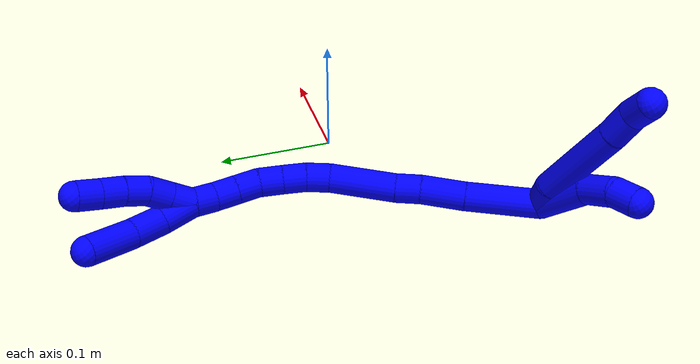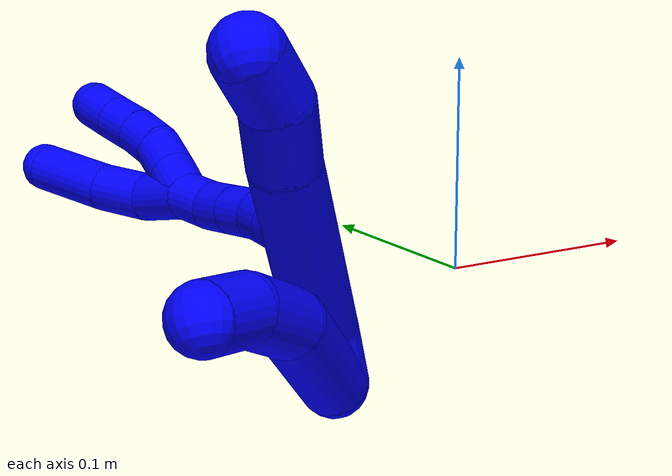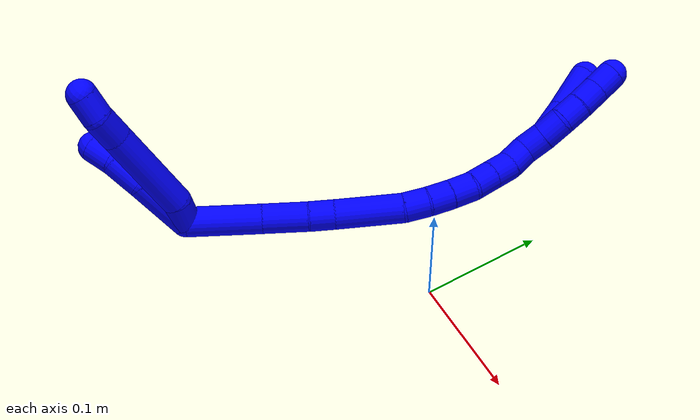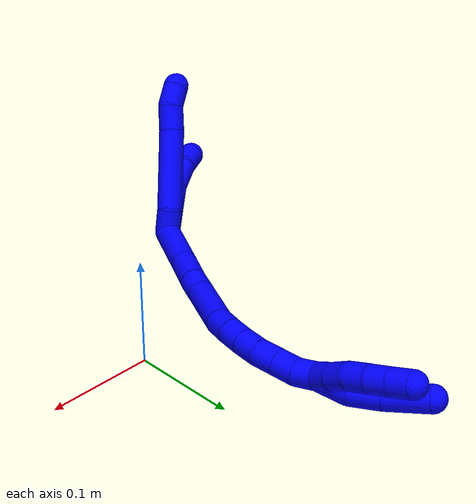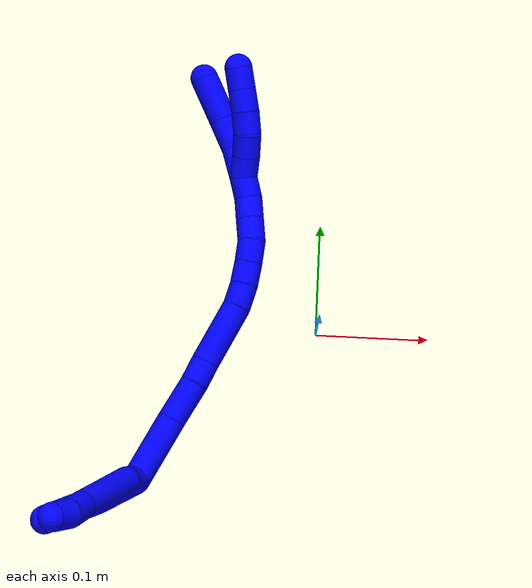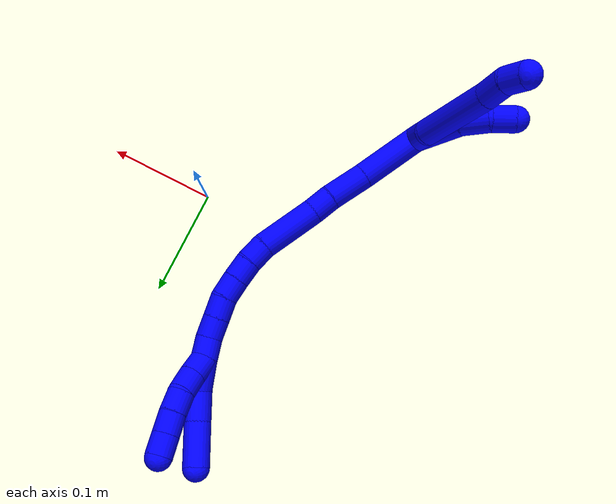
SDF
<sdf version="1.7">
 <world name="default">
  <model name="1">
   <static>0</static>
   <link name="1">
    <collision name="collision-cylinder-e_1_2_8">
     <pose>0.00471 -0.006912 -0.008269 2.44536 0.412019 1.04496</pose>
     <geometry><cylinder><radius>0.0125</radius><length>0.023524</length></cylinder></geometry>
     <surface>
      <friction><ode><mu>1.16</mu><mu2>1.16</mu2><slip1>0</slip1><slip2>0</slip2></ode></friction>
      <contact><ode><kp>1e+06</kp><kd>1</kd><max_vel>0</max_vel><min_depth>0.001</min_depth></ode></contact>
     </surface>
    </collision>
    <visual name="visual-cylinder-e_1_2_8">
     <pose>0.00471 -0.006912 -0.008269 2.44536 0.412019 1.04496</pose>
     <geometry><cylinder><radius>0.0125</radius><length>0.023524</length></cylinder></geometry>
     <material><ambient>0 0 1 1</ambient></material>
    </visual>
    <collision name="collision-cylinder-e_2_8_9">
     <pose>0.029758 -0.042729 -0.035088 2.14136 0.534631 0.929176</pose>
     <geometry><cylinder><radius>0.0125</radius><length>0.079831</length></cylinder></geometry>
     <surface>
      <friction><ode><mu>1.16</mu><mu2>1.16</mu2><slip1>0</slip1><slip2>0</slip2></ode></friction>
      <contact><ode><kp>1e+06</kp><kd>1</kd><max_vel>0</max_vel><min_depth>0.001</min_depth></ode></contact>
     </surface>
    </collision>
    <visual name="visual-cylinder-e_2_8_9">
     <pose>0.029758 -0.042729 -0.035088 2.14136 0.534631 0.929176</pose>
     <geometry><cylinder><radius>0.0125</radius><length>0.079831</length></cylinder></geometry>
     <material><ambient>0 0 1 1</ambient></material>
    </visual>
    <collision name="collision-cylinder-e_3_9_10">
     <pose>0.055507 -0.081052 -0.059946 2.16093 0.445341 0.802323</pose>
     <geometry><cylinder><radius>0.0125</radius><length>0.025121</length></cylinder></geometry>
     <surface>
      <friction><ode><mu>1.16</mu><mu2>1.16</mu2><slip1>0</slip1><slip2>0</slip2></ode></friction>
      <contact><ode><kp>1e+06</kp><kd>1</kd><max_vel>0</max_vel><min_depth>0.001</min_depth></ode></contact>
     </surface>
    </collision>
    <visual name="visual-cylinder-e_3_9_10">
     <pose>0.055507 -0.081052 -0.059946 2.16093 0.445341 0.802323</pose>
     <geometry><cylinder><radius>0.0125</radius><length>0.025121</length></cylinder></geometry>
     <material><ambient>0 0 1 1</ambient></material>
    </visual>
    <collision name="collision-cylinder-e_4_10_6">
     <pose>0.068262 -0.096479 -0.071332 2.27247 0.751099 1.40831</pose>
     <geometry><cylinder><radius>0.0125</radius><length>0.021525</length></cylinder></geometry>
     <surface>
      <friction><ode><mu>1.16</mu><mu2>1.16</mu2><slip1>0</slip1><slip2>0</slip2></ode></friction>
      <contact><ode><kp>1e+06</kp><kd>1</kd><max_vel>0</max_vel><min_depth>0.001</min_depth></ode></contact>
     </surface>
    </collision>
    <visual name="visual-cylinder-e_4_10_6">
     <pose>0.068262 -0.096479 -0.071332 2.27247 0.751099 1.40831</pose>
     <geometry><cylinder><radius>0.0125</radius><length>0.021525</length></cylinder></geometry>
     <material><ambient>0 0 1 1</ambient></material>
    </visual>
    <collision name="collision-cylinder-e_1_2_11">
     <pose>0.017382 -0.016895 -0.006401 1.93294 0.766095 1.05649</pose>
     <geometry><cylinder><radius>0.0125</radius><length>0.050142</length></cylinder></geometry>
     <surface>
      <friction><ode><mu>1.16</mu><mu2>1.16</mu2><slip1>0</slip1><slip2>0</slip2></ode></friction>
      <contact><ode><kp>1e+06</kp><kd>1</kd><max_vel>0</max_vel><min_depth>0.001</min_depth></ode></contact>
     </surface>
    </collision>
    <visual name="visual-cylinder-e_1_2_11">
     <pose>0.017382 -0.016895 -0.006401 1.93294 0.766095 1.05649</pose>
     <geometry><cylinder><radius>0.0125</radius><length>0.050142</length></cylinder></geometry>
     <material><ambient>0 0 1 1</ambient></material>
    </visual>
    <collision name="collision-cylinder-e_2_11_12">
     <pose>0.046985 -0.04078 -0.013402 1.65643 1.0496 1.12549</pose>
     <geometry><cylinder><radius>0.0125</radius><length>0.028183</length></cylinder></geometry>
     <surface>
      <friction><ode><mu>1.16</mu><mu2>1.16</mu2><slip1>0</slip1><slip2>0</slip2></ode></friction>
      <contact><ode><kp>1e+06</kp><kd>1</kd><max_vel>0</max_vel><min_depth>0.001</min_depth></ode></contact>
     </surface>
    </collision>
    <visual name="visual-cylinder-e_2_11_12">
     <pose>0.046985 -0.04078 -0.013402 1.65643 1.0496 1.12549</pose>
     <geometry><cylinder><radius>0.0125</radius><length>0.028183</length></cylinder></geometry>
     <material><ambient>0 0 1 1</ambient></material>
    </visual>
    <collision name="collision-cylinder-e_3_12_5">
     <pose>0.069131 -0.05138 -0.01157 0.977892 1.15763 0.669198</pose>
     <geometry><cylinder><radius>0.0125</radius><length>0.021675</length></cylinder></geometry>
     <surface>
      <friction><ode><mu>1.16</mu><mu2>1.16</mu2><slip1>0</slip1><slip2>0</slip2></ode></friction>
      <contact><ode><kp>1e+06</kp><kd>1</kd><max_vel>0</max_vel><min_depth>0.001</min_depth></ode></contact>
     </surface>
    </collision>
    <visual name="visual-cylinder-e_3_12_5">
     <pose>0.069131 -0.05138 -0.01157 0.977892 1.15763 0.669198</pose>
     <geometry><cylinder><radius>0.0125</radius><length>0.021675</length></cylinder></geometry>
     <material><ambient>0 0 1 1</ambient></material>
    </visual>
    <collision name="collision-cylinder-e_1_2_13">
     <pose>-0.0145 0.022646 -0.015911 -2.18326 -0.482597 0.884714</pose>
     <geometry><cylinder><radius>0.0125</radius><length>0.06249</length></cylinder></geometry>
     <surface>
      <friction><ode><mu>1.16</mu><mu2>1.16</mu2><slip1>0</slip1><slip2>0</slip2></ode></friction>
      <contact><ode><kp>1e+06</kp><kd>1</kd><max_vel>0</max_vel><min_depth>0.001</min_depth></ode></contact>
     </surface>
    </collision>
    <visual name="visual-cylinder-e_1_2_13">
     <pose>-0.0145 0.022646 -0.015911 -2.18326 -0.482597 0.884714</pose>
     <geometry><cylinder><radius>0.0125</radius><length>0.06249</length></cylinder></geometry>
     <material><ambient>0 0 1 1</ambient></material>
    </visual>
    <collision name="collision-cylinder-e_2_13_14">
     <pose>-0.038117 0.058234 -0.04212 -2.24292 -0.503766 0.980422</pose>
     <geometry><cylinder><radius>0.0125</radius><length>0.037771</length></cylinder></geometry>
     <surface>
      <friction><ode><mu>1.16</mu><mu2>1.16</mu2><slip1>0</slip1><slip2>0</slip2></ode></friction>
      <contact><ode><kp>1e+06</kp><kd>1</kd><max_vel>0</max_vel><min_depth>0.001</min_depth></ode></contact>
     </surface>
    </collision>
    <visual name="visual-cylinder-e_2_13_14">
     <pose>-0.038117 0.058234 -0.04212 -2.24292 -0.503766 0.980422</pose>
     <geometry><cylinder><radius>0.0125</radius><length>0.037771</length></cylinder></geometry>
     <material><ambient>0 0 1 1</ambient></material>
    </visual>
    <collision name="collision-cylinder-e_3_14_15">
     <pose>-0.051671 0.079297 -0.057842 -2.15967 -0.426482 0.769653</pose>
     <geometry><cylinder><radius>0.0125</radius><length>0.021454</length></cylinder></geometry>
     <surface>
      <friction><ode><mu>1.16</mu><mu2>1.16</mu2><slip1>0</slip1><slip2>0</slip2></ode></friction>
      <contact><ode><kp>1e+06</kp><kd>1</kd><max_vel>0</max_vel><min_depth>0.001</min_depth></ode></contact>
     </surface>
    </collision>
    <visual name="visual-cylinder-e_3_14_15">
     <pose>-0.051671 0.079297 -0.057842 -2.15967 -0.426482 0.769653</pose>
     <geometry><cylinder><radius>0.0125</radius><length>0.021454</length></cylinder></geometry>
     <material><ambient>0 0 1 1</ambient></material>
    </visual>
    <collision name="collision-cylinder-e_4_15_16">
     <pose>-0.068743 0.107046 -0.079519 -2.26239 -0.460285 0.92439</pose>
     <geometry><cylinder><radius>0.0125</radius><length>0.056886</length></cylinder></geometry>
     <surface>
      <friction><ode><mu>1.16</mu><mu2>1.16</mu2><slip1>0</slip1><slip2>0</slip2></ode></friction>
      <contact><ode><kp>1e+06</kp><kd>1</kd><max_vel>0</max_vel><min_depth>0.001</min_depth></ode></contact>
     </surface>
    </collision>
    <visual name="visual-cylinder-e_4_15_16">
     <pose>-0.068743 0.107046 -0.079519 -2.26239 -0.460285 0.92439</pose>
     <geometry><cylinder><radius>0.0125</radius><length>0.056886</length></cylinder></geometry>
     <material><ambient>0 0 1 1</ambient></material>
    </visual>
    <collision name="collision-cylinder-e_5_16_17">
     <pose>-0.084114 0.134506 -0.101793 -2.22626 -0.27024 0.538611</pose>
     <geometry><cylinder><radius>0.0125</radius><length>0.020504</length></cylinder></geometry>
     <surface>
      <friction><ode><mu>1.16</mu><mu2>1.16</mu2><slip1>0</slip1><slip2>0</slip2></ode></friction>
      <contact><ode><kp>1e+06</kp><kd>1</kd><max_vel>0</max_vel><min_depth>0.001</min_depth></ode></contact>
     </surface>
    </collision>
    <visual name="visual-cylinder-e_5_16_17">
     <pose>-0.084114 0.134506 -0.101793 -2.22626 -0.27024 0.538611</pose>
     <geometry><cylinder><radius>0.0125</radius><length>0.020504</length></cylinder></geometry>
     <material><ambient>0 0 1 1</ambient></material>
    </visual>
    <collision name="collision-cylinder-e_6_17_18">
     <pose>-0.088444 0.15082 -0.113113 -2.12917 -0.157956 0.283595</pose>
     <geometry><cylinder><radius>0.0125</radius><length>0.020252</length></cylinder></geometry>
     <surface>
      <friction><ode><mu>1.16</mu><mu2>1.16</mu2><slip1>0</slip1><slip2>0</slip2></ode></friction>
      <contact><ode><kp>1e+06</kp><kd>1</kd><max_vel>0</max_vel><min_depth>0.001</min_depth></ode></contact>
     </surface>
    </collision>
    <visual name="visual-cylinder-e_6_17_18">
     <pose>-0.088444 0.15082 -0.113113 -2.12917 -0.157956 0.283595</pose>
     <geometry><cylinder><radius>0.0125</radius><length>0.020252</length></cylinder></geometry>
     <material><ambient>0 0 1 1</ambient></material>
    </visual>
    <collision name="collision-cylinder-e_7_18_19">
     <pose>-0.091115 0.167869 -0.123883 -2.13916 -0.105712 0.19253</pose>
     <geometry><cylinder><radius>0.0125</radius><length>0.020447</length></cylinder></geometry>
     <surface>
      <friction><ode><mu>1.16</mu><mu2>1.16</mu2><slip1>0</slip1><slip2>0</slip2></ode></friction>
      <contact><ode><kp>1e+06</kp><kd>1</kd><max_vel>0</max_vel><min_depth>0.001</min_depth></ode></contact>
     </surface>
    </collision>
    <visual name="visual-cylinder-e_7_18_19">
     <pose>-0.091115 0.167869 -0.123883 -2.13916 -0.105712 0.19253</pose>
     <geometry><cylinder><radius>0.0125</radius><length>0.020447</length></cylinder></geometry>
     <material><ambient>0 0 1 1</ambient></material>
    </visual>
    <collision name="collision-cylinder-e_8_19_20">
     <pose>-0.091155 0.185362 -0.133894 -2.04128 0.103412 -0.168361</pose>
     <geometry><cylinder><radius>0.0125</radius><length>0.020133</length></cylinder></geometry>
     <surface>
      <friction><ode><mu>1.16</mu><mu2>1.16</mu2><slip1>0</slip1><slip2>0</slip2></ode></friction>
      <contact><ode><kp>1e+06</kp><kd>1</kd><max_vel>0</max_vel><min_depth>0.001</min_depth></ode></contact>
     </surface>
    </collision>
    <visual name="visual-cylinder-e_8_19_20">
     <pose>-0.091155 0.185362 -0.133894 -2.04128 0.103412 -0.168361</pose>
     <geometry><cylinder><radius>0.0125</radius><length>0.020133</length></cylinder></geometry>
     <material><ambient>0 0 1 1</ambient></material>
    </visual>
    <collision name="collision-cylinder-e_9_20_21">
     <pose>-0.08911 0.20317 -0.142945 -2.04071 0.100601 -0.163694</pose>
     <geometry><cylinder><radius>0.0125</radius><length>0.020028</length></cylinder></geometry>
     <surface>
      <friction><ode><mu>1.16</mu><mu2>1.16</mu2><slip1>0</slip1><slip2>0</slip2></ode></friction>
      <contact><ode><kp>1e+06</kp><kd>1</kd><max_vel>0</max_vel><min_depth>0.001</min_depth></ode></contact>
     </surface>
    </collision>
    <visual name="visual-cylinder-e_9_20_21">
     <pose>-0.08911 0.20317 -0.142945 -2.04071 0.100601 -0.163694</pose>
     <geometry><cylinder><radius>0.0125</radius><length>0.020028</length></cylinder></geometry>
     <material><ambient>0 0 1 1</ambient></material>
    </visual>
    <collision name="collision-cylinder-e_10_21_1">
     <pose>-0.085389 0.219758 -0.153255 -2.21601 0.274542 -0.540211</pose>
     <geometry><cylinder><radius>0.0125</radius><length>0.020035</length></cylinder></geometry>
     <surface>
      <friction><ode><mu>1.16</mu><mu2>1.16</mu2><slip1>0</slip1><slip2>0</slip2></ode></friction>
      <contact><ode><kp>1e+06</kp><kd>1</kd><max_vel>0</max_vel><min_depth>0.001</min_depth></ode></contact>
     </surface>
    </collision>
    <visual name="visual-cylinder-e_10_21_1">
     <pose>-0.085389 0.219758 -0.153255 -2.21601 0.274542 -0.540211</pose>
     <geometry><cylinder><radius>0.0125</radius><length>0.020035</length></cylinder></geometry>
     <material><ambient>0 0 1 1</ambient></material>
    </visual>
    <collision name="collision-cylinder-e_1_1_22">
     <pose>-0.082928 0.232431 -0.167728 -2.62138 -0.025488 0.095702</pose>
     <geometry><cylinder><radius>0.0125</radius><length>0.02</length></cylinder></geometry>
     <surface>
      <friction><ode><mu>1.16</mu><mu2>1.16</mu2><slip1>0</slip1><slip2>0</slip2></ode></friction>
      <contact><ode><kp>1e+06</kp><kd>1</kd><max_vel>0</max_vel><min_depth>0.001</min_depth></ode></contact>
     </surface>
    </collision>
    <visual name="visual-cylinder-e_1_1_22">
     <pose>-0.082928 0.232431 -0.167728 -2.62138 -0.025488 0.095702</pose>
     <geometry><cylinder><radius>0.0125</radius><length>0.02</length></cylinder></geometry>
     <material><ambient>0 0 1 1</ambient></material>
    </visual>
    <collision name="collision-cylinder-e_2_22_23">
     <pose>-0.082748 0.242117 -0.185209 -2.64981 0.043486 -0.172869</pose>
     <geometry><cylinder><radius>0.0125</radius><length>0.02</length></cylinder></geometry>
     <surface>
      <friction><ode><mu>1.16</mu><mu2>1.16</mu2><slip1>0</slip1><slip2>0</slip2></ode></friction>
      <contact><ode><kp>1e+06</kp><kd>1</kd><max_vel>0</max_vel><min_depth>0.001</min_depth></ode></contact>
     </surface>
    </collision>
    <visual name="visual-cylinder-e_2_22_23">
     <pose>-0.082748 0.242117 -0.185209 -2.64981 0.043486 -0.172869</pose>
     <geometry><cylinder><radius>0.0125</radius><length>0.02</length></cylinder></geometry>
     <material><ambient>0 0 1 1</ambient></material>
    </visual>
    <collision name="collision-cylinder-e_3_23_24">
     <pose>-0.080746 0.253515 -0.20129 -2.39873 0.157324 -0.399345</pose>
     <geometry><cylinder><radius>0.0125</radius><length>0.02</length></cylinder></geometry>
     <surface>
      <friction><ode><mu>1.16</mu><mu2>1.16</mu2><slip1>0</slip1><slip2>0</slip2></ode></friction>
      <contact><ode><kp>1e+06</kp><kd>1</kd><max_vel>0</max_vel><min_depth>0.001</min_depth></ode></contact>
     </surface>
    </collision>
    <visual name="visual-cylinder-e_3_23_24">
     <pose>-0.080746 0.253515 -0.20129 -2.39873 0.157324 -0.399345</pose>
     <geometry><cylinder><radius>0.0125</radius><length>0.02</length></cylinder></geometry>
     <material><ambient>0 0 1 1</ambient></material>
    </visual>
    <collision name="collision-cylinder-e_4_24_25">
     <pose>-0.076955 0.267236 -0.215308 -2.33469 0.224355 -0.516034</pose>
     <geometry><cylinder><radius>0.0125</radius><length>0.02</length></cylinder></geometry>
     <surface>
      <friction><ode><mu>1.16</mu><mu2>1.16</mu2><slip1>0</slip1><slip2>0</slip2></ode></friction>
      <contact><ode><kp>1e+06</kp><kd>1</kd><max_vel>0</max_vel><min_depth>0.001</min_depth></ode></contact>
     </surface>
    </collision>
    <visual name="visual-cylinder-e_4_24_25">
     <pose>-0.076955 0.267236 -0.215308 -2.33469 0.224355 -0.516034</pose>
     <geometry><cylinder><radius>0.0125</radius><length>0.02</length></cylinder></geometry>
     <material><ambient>0 0 1 1</ambient></material>
    </visual>
    <collision name="collision-cylinder-e_5_25_4">
     <pose>-0.072492 0.281158 -0.228954 -2.35769 0.225707 -0.535235</pose>
     <geometry><cylinder><radius>0.0125</radius><length>0.02</length></cylinder></geometry>
     <surface>
      <friction><ode><mu>1.16</mu><mu2>1.16</mu2><slip1>0</slip1><slip2>0</slip2></ode></friction>
      <contact><ode><kp>1e+06</kp><kd>1</kd><max_vel>0</max_vel><min_depth>0.001</min_depth></ode></contact>
     </surface>
    </collision>
    <visual name="visual-cylinder-e_5_25_4">
     <pose>-0.072492 0.281158 -0.228954 -2.35769 0.225707 -0.535235</pose>
     <geometry><cylinder><radius>0.0125</radius><length>0.02</length></cylinder></geometry>
     <material><ambient>0 0 1 1</ambient></material>
    </visual>
    <collision name="collision-cylinder-e_1_1_26">
     <pose>-0.079023 0.24082 -0.163579 -1.89739 0.253211 -0.351352</pose>
     <geometry><cylinder><radius>0.0125</radius><length>0.029138</length></cylinder></geometry>
     <surface>
      <friction><ode><mu>1.16</mu><mu2>1.16</mu2><slip1>0</slip1><slip2>0</slip2></ode></friction>
      <contact><ode><kp>1e+06</kp><kd>1</kd><max_vel>0</max_vel><min_depth>0.001</min_depth></ode></contact>
     </surface>
    </collision>
    <visual name="visual-cylinder-e_1_1_26">
     <pose>-0.079023 0.24082 -0.163579 -1.89739 0.253211 -0.351352</pose>
     <geometry><cylinder><radius>0.0125</radius><length>0.029138</length></cylinder></geometry>
     <material><ambient>0 0 1 1</ambient></material>
    </visual>
    <collision name="collision-cylinder-e_2_26_27">
     <pose>-0.068991 0.265261 -0.175125 -2.13557 0.452809 -0.792974</pose>
     <geometry><cylinder><radius>0.0125</radius><length>0.029178</length></cylinder></geometry>
     <surface>
      <friction><ode><mu>1.16</mu><mu2>1.16</mu2><slip1>0</slip1><slip2>0</slip2></ode></friction>
      <contact><ode><kp>1e+06</kp><kd>1</kd><max_vel>0</max_vel><min_depth>0.001</min_depth></ode></contact>
     </surface>
    </collision>
    <visual name="visual-cylinder-e_2_26_27">
     <pose>-0.068991 0.265261 -0.175125 -2.13557 0.452809 -0.792974</pose>
     <geometry><cylinder><radius>0.0125</radius><length>0.029178</length></cylinder></geometry>
     <material><ambient>0 0 1 1</ambient></material>
    </visual>
    <collision name="collision-cylinder-e_3_27_3">
     <pose>-0.052977 0.290779 -0.193688 -2.24519 0.480359 -0.942177</pose>
     <geometry><cylinder><radius>0.0125</radius><length>0.041684</length></cylinder></geometry>
     <surface>
      <friction><ode><mu>1.16</mu><mu2>1.16</mu2><slip1>0</slip1><slip2>0</slip2></ode></friction>
      <contact><ode><kp>1e+06</kp><kd>1</kd><max_vel>0</max_vel><min_depth>0.001</min_depth></ode></contact>
     </surface>
    </collision>
    <visual name="visual-cylinder-e_3_27_3">
     <pose>-0.052977 0.290779 -0.193688 -2.24519 0.480359 -0.942177</pose>
     <geometry><cylinder><radius>0.0125</radius><length>0.041684</length></cylinder></geometry>
     <material><ambient>0 0 1 1</ambient></material>
    </visual>
    <collision name="collision-sphere-3">
     <pose>-0.043346 0.305216 -0.20523 0 -0 0</pose>
     <geometry><sphere><radius>0.0125</radius></sphere></geometry>
     <surface>
      <friction><ode><mu>1.16</mu><mu2>1.16</mu2><slip1>0</slip1><slip2>0</slip2></ode></friction>
      <contact><ode><kp>1e+06</kp><kd>1</kd><max_vel>0</max_vel><min_depth>0.001</min_depth></ode></contact>
     </surface>
    </collision>
    <visual name="visual-sphere-3">
     <pose>-0.043346 0.305216 -0.20523 0 -0 0</pose>
     <geometry><sphere><radius>0.0125</radius></sphere></geometry>
     <material><ambient>0 0 1 1</ambient></material>
    </visual>
    <collision name="collision-sphere-27">
     <pose>-0.062608 0.276342 -0.182147 0 -0 0</pose>
     <geometry><sphere><radius>0.0125</radius></sphere></geometry>
     <surface>
      <friction><ode><mu>1.16</mu><mu2>1.16</mu2><slip1>0</slip1><slip2>0</slip2></ode></friction>
      <contact><ode><kp>1e+06</kp><kd>1</kd><max_vel>0</max_vel><min_depth>0.001</min_depth></ode></contact>
     </surface>
    </collision>
    <visual name="visual-sphere-27">
     <pose>-0.062608 0.276342 -0.182147 0 -0 0</pose>
     <geometry><sphere><radius>0.0125</radius></sphere></geometry>
     <material><ambient>0 0 1 1</ambient></material>
    </visual>
    <collision name="collision-sphere-26">
     <pose>-0.075373 0.254179 -0.168103 0 -0 0</pose>
     <geometry><sphere><radius>0.0125</radius></sphere></geometry>
     <surface>
      <friction><ode><mu>1.16</mu><mu2>1.16</mu2><slip1>0</slip1><slip2>0</slip2></ode></friction>
      <contact><ode><kp>1e+06</kp><kd>1</kd><max_vel>0</max_vel><min_depth>0.001</min_depth></ode></contact>
     </surface>
    </collision>
    <visual name="visual-sphere-26">
     <pose>-0.075373 0.254179 -0.168103 0 -0 0</pose>
     <geometry><sphere><radius>0.0125</radius></sphere></geometry>
     <material><ambient>0 0 1 1</ambient></material>
    </visual>
    <collision name="collision-sphere-4">
     <pose>-0.070254 0.288039 -0.235856 0 -0 0</pose>
     <geometry><sphere><radius>0.0125</radius></sphere></geometry>
     <surface>
      <friction><ode><mu>1.16</mu><mu2>1.16</mu2><slip1>0</slip1><slip2>0</slip2></ode></friction>
      <contact><ode><kp>1e+06</kp><kd>1</kd><max_vel>0</max_vel><min_depth>0.001</min_depth></ode></contact>
     </surface>
    </collision>
    <visual name="visual-sphere-4">
     <pose>-0.070254 0.288039 -0.235856 0 -0 0</pose>
     <geometry><sphere><radius>0.0125</radius></sphere></geometry>
     <material><ambient>0 0 1 1</ambient></material>
    </visual>
    <collision name="collision-sphere-25">
     <pose>-0.07473 0.274277 -0.222052 0 -0 0</pose>
     <geometry><sphere><radius>0.0125</radius></sphere></geometry>
     <surface>
      <friction><ode><mu>1.16</mu><mu2>1.16</mu2><slip1>0</slip1><slip2>0</slip2></ode></friction>
      <contact><ode><kp>1e+06</kp><kd>1</kd><max_vel>0</max_vel><min_depth>0.001</min_depth></ode></contact>
     </surface>
    </collision>
    <visual name="visual-sphere-25">
     <pose>-0.07473 0.274277 -0.222052 0 -0 0</pose>
     <geometry><sphere><radius>0.0125</radius></sphere></geometry>
     <material><ambient>0 0 1 1</ambient></material>
    </visual>
    <collision name="collision-sphere-24">
     <pose>-0.079179 0.260195 -0.208564 0 -0 0</pose>
     <geometry><sphere><radius>0.0125</radius></sphere></geometry>
     <surface>
      <friction><ode><mu>1.16</mu><mu2>1.16</mu2><slip1>0</slip1><slip2>0</slip2></ode></friction>
      <contact><ode><kp>1e+06</kp><kd>1</kd><max_vel>0</max_vel><min_depth>0.001</min_depth></ode></contact>
     </surface>
    </collision>
    <visual name="visual-sphere-24">
     <pose>-0.079179 0.260195 -0.208564 0 -0 0</pose>
     <geometry><sphere><radius>0.0125</radius></sphere></geometry>
     <material><ambient>0 0 1 1</ambient></material>
    </visual>
    <collision name="collision-sphere-23">
     <pose>-0.082313 0.246835 -0.194015 0 -0 0</pose>
     <geometry><sphere><radius>0.0125</radius></sphere></geometry>
     <surface>
      <friction><ode><mu>1.16</mu><mu2>1.16</mu2><slip1>0</slip1><slip2>0</slip2></ode></friction>
      <contact><ode><kp>1e+06</kp><kd>1</kd><max_vel>0</max_vel><min_depth>0.001</min_depth></ode></contact>
     </surface>
    </collision>
    <visual name="visual-sphere-23">
     <pose>-0.082313 0.246835 -0.194015 0 -0 0</pose>
     <geometry><sphere><radius>0.0125</radius></sphere></geometry>
     <material><ambient>0 0 1 1</ambient></material>
    </visual>
    <collision name="collision-sphere-22">
     <pose>-0.083182 0.2374 -0.176402 0 -0 0</pose>
     <geometry><sphere><radius>0.0125</radius></sphere></geometry>
     <surface>
      <friction><ode><mu>1.16</mu><mu2>1.16</mu2><slip1>0</slip1><slip2>0</slip2></ode></friction>
      <contact><ode><kp>1e+06</kp><kd>1</kd><max_vel>0</max_vel><min_depth>0.001</min_depth></ode></contact>
     </surface>
    </collision>
    <visual name="visual-sphere-22">
     <pose>-0.083182 0.2374 -0.176402 0 -0 0</pose>
     <geometry><sphere><radius>0.0125</radius></sphere></geometry>
     <material><ambient>0 0 1 1</ambient></material>
    </visual>
    <collision name="collision-sphere-1">
     <pose>-0.082673 0.227462 -0.159054 0 -0 0</pose>
     <geometry><sphere><radius>0.0125</radius></sphere></geometry>
     <surface>
      <friction><ode><mu>1.16</mu><mu2>1.16</mu2><slip1>0</slip1><slip2>0</slip2></ode></friction>
      <contact><ode><kp>1e+06</kp><kd>1</kd><max_vel>0</max_vel><min_depth>0.001</min_depth></ode></contact>
     </surface>
    </collision>
    <visual name="visual-sphere-1">
     <pose>-0.082673 0.227462 -0.159054 0 -0 0</pose>
     <geometry><sphere><radius>0.0125</radius></sphere></geometry>
     <material><ambient>0 0 1 1</ambient></material>
    </visual>
    <collision name="collision-sphere-21">
     <pose>-0.088104 0.212054 -0.147456 0 -0 0</pose>
     <geometry><sphere><radius>0.0125</radius></sphere></geometry>
     <surface>
      <friction><ode><mu>1.16</mu><mu2>1.16</mu2><slip1>0</slip1><slip2>0</slip2></ode></friction>
      <contact><ode><kp>1e+06</kp><kd>1</kd><max_vel>0</max_vel><min_depth>0.001</min_depth></ode></contact>
     </surface>
    </collision>
    <visual name="visual-sphere-21">
     <pose>-0.088104 0.212054 -0.147456 0 -0 0</pose>
     <geometry><sphere><radius>0.0125</radius></sphere></geometry>
     <material><ambient>0 0 1 1</ambient></material>
    </visual>
    <collision name="collision-sphere-11">
     <pose>0.034765 -0.03379 -0.012802 0 -0 0</pose>
     <geometry><sphere><radius>0.0125</radius></sphere></geometry>
     <surface>
      <friction><ode><mu>1.16</mu><mu2>1.16</mu2><slip1>0</slip1><slip2>0</slip2></ode></friction>
      <contact><ode><kp>1e+06</kp><kd>1</kd><max_vel>0</max_vel><min_depth>0.001</min_depth></ode></contact>
     </surface>
    </collision>
    <visual name="visual-sphere-11">
     <pose>0.034765 -0.03379 -0.012802 0 -0 0</pose>
     <geometry><sphere><radius>0.0125</radius></sphere></geometry>
     <material><ambient>0 0 1 1</ambient></material>
    </visual>
    <collision name="collision-sphere-6">
     <pose>0.075607 -0.102487 -0.07641 0 -0 0</pose>
     <geometry><sphere><radius>0.0125</radius></sphere></geometry>
     <surface>
      <friction><ode><mu>1.16</mu><mu2>1.16</mu2><slip1>0</slip1><slip2>0</slip2></ode></friction>
      <contact><ode><kp>1e+06</kp><kd>1</kd><max_vel>0</max_vel><min_depth>0.001</min_depth></ode></contact>
     </surface>
    </collision>
    <visual name="visual-sphere-6">
     <pose>0.075607 -0.102487 -0.07641 0 -0 0</pose>
     <geometry><sphere><radius>0.0125</radius></sphere></geometry>
     <material><ambient>0 0 1 1</ambient></material>
    </visual>
    <collision name="collision-sphere-10">
     <pose>0.060917 -0.09047 -0.066254 0 -0 0</pose>
     <geometry><sphere><radius>0.0125</radius></sphere></geometry>
     <surface>
      <friction><ode><mu>1.16</mu><mu2>1.16</mu2><slip1>0</slip1><slip2>0</slip2></ode></friction>
      <contact><ode><kp>1e+06</kp><kd>1</kd><max_vel>0</max_vel><min_depth>0.001</min_depth></ode></contact>
     </surface>
    </collision>
    <visual name="visual-sphere-10">
     <pose>0.060917 -0.09047 -0.066254 0 -0 0</pose>
     <geometry><sphere><radius>0.0125</radius></sphere></geometry>
     <material><ambient>0 0 1 1</ambient></material>
    </visual>
    <collision name="collision-sphere-9">
     <pose>0.050096 -0.071634 -0.053639 0 -0 0</pose>
     <geometry><sphere><radius>0.0125</radius></sphere></geometry>
     <surface>
      <friction><ode><mu>1.16</mu><mu2>1.16</mu2><slip1>0</slip1><slip2>0</slip2></ode></friction>
      <contact><ode><kp>1e+06</kp><kd>1</kd><max_vel>0</max_vel><min_depth>0.001</min_depth></ode></contact>
     </surface>
    </collision>
    <visual name="visual-sphere-9">
     <pose>0.050096 -0.071634 -0.053639 0 -0 0</pose>
     <geometry><sphere><radius>0.0125</radius></sphere></geometry>
     <material><ambient>0 0 1 1</ambient></material>
    </visual>
    <collision name="collision-sphere-2">
     <geometry><sphere><radius>0.0125</radius></sphere></geometry>
     <surface>
      <friction><ode><mu>1.16</mu><mu2>1.16</mu2><slip1>0</slip1><slip2>0</slip2></ode></friction>
      <contact><ode><kp>1e+06</kp><kd>1</kd><max_vel>0</max_vel><min_depth>0.001</min_depth></ode></contact>
     </surface>
    </collision>
    <visual name="visual-sphere-2">
     <geometry><sphere><radius>0.0125</radius></sphere></geometry>
     <material><ambient>0 0 1 1</ambient></material>
    </visual>
    <collision name="collision-sphere-19">
     <pose>-0.092194 0.176437 -0.129355 0 -0 0</pose>
     <geometry><sphere><radius>0.0125</radius></sphere></geometry>
     <surface>
      <friction><ode><mu>1.16</mu><mu2>1.16</mu2><slip1>0</slip1><slip2>0</slip2></ode></friction>
      <contact><ode><kp>1e+06</kp><kd>1</kd><max_vel>0</max_vel><min_depth>0.001</min_depth></ode></contact>
     </surface>
    </collision>
    <visual name="visual-sphere-19">
     <pose>-0.092194 0.176437 -0.129355 0 -0 0</pose>
     <geometry><sphere><radius>0.0125</radius></sphere></geometry>
     <material><ambient>0 0 1 1</ambient></material>
    </visual>
    <collision name="collision-sphere-8">
     <pose>0.00942 -0.013824 -0.016538 0 -0 0</pose>
     <geometry><sphere><radius>0.0125</radius></sphere></geometry>
     <surface>
      <friction><ode><mu>1.16</mu><mu2>1.16</mu2><slip1>0</slip1><slip2>0</slip2></ode></friction>
      <contact><ode><kp>1e+06</kp><kd>1</kd><max_vel>0</max_vel><min_depth>0.001</min_depth></ode></contact>
     </surface>
    </collision>
    <visual name="visual-sphere-8">
     <pose>0.00942 -0.013824 -0.016538 0 -0 0</pose>
     <geometry><sphere><radius>0.0125</radius></sphere></geometry>
     <material><ambient>0 0 1 1</ambient></material>
    </visual>
    <collision name="collision-sphere-12">
     <pose>0.059206 -0.047771 -0.014002 0 -0 0</pose>
     <geometry><sphere><radius>0.0125</radius></sphere></geometry>
     <surface>
      <friction><ode><mu>1.16</mu><mu2>1.16</mu2><slip1>0</slip1><slip2>0</slip2></ode></friction>
      <contact><ode><kp>1e+06</kp><kd>1</kd><max_vel>0</max_vel><min_depth>0.001</min_depth></ode></contact>
     </surface>
    </collision>
    <visual name="visual-sphere-12">
     <pose>0.059206 -0.047771 -0.014002 0 -0 0</pose>
     <geometry><sphere><radius>0.0125</radius></sphere></geometry>
     <material><ambient>0 0 1 1</ambient></material>
    </visual>
    <collision name="collision-sphere-5">
     <pose>0.079057 -0.054989 -0.009139 0 -0 0</pose>
     <geometry><sphere><radius>0.0125</radius></sphere></geometry>
     <surface>
      <friction><ode><mu>1.16</mu><mu2>1.16</mu2><slip1>0</slip1><slip2>0</slip2></ode></friction>
      <contact><ode><kp>1e+06</kp><kd>1</kd><max_vel>0</max_vel><min_depth>0.001</min_depth></ode></contact>
     </surface>
    </collision>
    <visual name="visual-sphere-5">
     <pose>0.079057 -0.054989 -0.009139 0 -0 0</pose>
     <geometry><sphere><radius>0.0125</radius></sphere></geometry>
     <material><ambient>0 0 1 1</ambient></material>
    </visual>
    <collision name="collision-sphere-13">
     <pose>-0.029 0.045292 -0.031821 0 -0 0</pose>
     <geometry><sphere><radius>0.0125</radius></sphere></geometry>
     <surface>
      <friction><ode><mu>1.16</mu><mu2>1.16</mu2><slip1>0</slip1><slip2>0</slip2></ode></friction>
      <contact><ode><kp>1e+06</kp><kd>1</kd><max_vel>0</max_vel><min_depth>0.001</min_depth></ode></contact>
     </surface>
    </collision>
    <visual name="visual-sphere-13">
     <pose>-0.029 0.045292 -0.031821 0 -0 0</pose>
     <geometry><sphere><radius>0.0125</radius></sphere></geometry>
     <material><ambient>0 0 1 1</ambient></material>
    </visual>
    <collision name="collision-sphere-14">
     <pose>-0.047233 0.071176 -0.052418 0 -0 0</pose>
     <geometry><sphere><radius>0.0125</radius></sphere></geometry>
     <surface>
      <friction><ode><mu>1.16</mu><mu2>1.16</mu2><slip1>0</slip1><slip2>0</slip2></ode></friction>
      <contact><ode><kp>1e+06</kp><kd>1</kd><max_vel>0</max_vel><min_depth>0.001</min_depth></ode></contact>
     </surface>
    </collision>
    <visual name="visual-sphere-14">
     <pose>-0.047233 0.071176 -0.052418 0 -0 0</pose>
     <geometry><sphere><radius>0.0125</radius></sphere></geometry>
     <material><ambient>0 0 1 1</ambient></material>
    </visual>
    <collision name="collision-sphere-15">
     <pose>-0.056108 0.087418 -0.063267 0 -0 0</pose>
     <geometry><sphere><radius>0.0125</radius></sphere></geometry>
     <surface>
      <friction><ode><mu>1.16</mu><mu2>1.16</mu2><slip1>0</slip1><slip2>0</slip2></ode></friction>
      <contact><ode><kp>1e+06</kp><kd>1</kd><max_vel>0</max_vel><min_depth>0.001</min_depth></ode></contact>
     </surface>
    </collision>
    <visual name="visual-sphere-15">
     <pose>-0.056108 0.087418 -0.063267 0 -0 0</pose>
     <geometry><sphere><radius>0.0125</radius></sphere></geometry>
     <material><ambient>0 0 1 1</ambient></material>
    </visual>
    <collision name="collision-sphere-16">
     <pose>-0.081377 0.126674 -0.095771 0 -0 0</pose>
     <geometry><sphere><radius>0.0125</radius></sphere></geometry>
     <surface>
      <friction><ode><mu>1.16</mu><mu2>1.16</mu2><slip1>0</slip1><slip2>0</slip2></ode></friction>
      <contact><ode><kp>1e+06</kp><kd>1</kd><max_vel>0</max_vel><min_depth>0.001</min_depth></ode></contact>
     </surface>
    </collision>
    <visual name="visual-sphere-16">
     <pose>-0.081377 0.126674 -0.095771 0 -0 0</pose>
     <geometry><sphere><radius>0.0125</radius></sphere></geometry>
     <material><ambient>0 0 1 1</ambient></material>
    </visual>
    <collision name="collision-sphere-17">
     <pose>-0.086851 0.142339 -0.107815 0 -0 0</pose>
     <geometry><sphere><radius>0.0125</radius></sphere></geometry>
     <surface>
      <friction><ode><mu>1.16</mu><mu2>1.16</mu2><slip1>0</slip1><slip2>0</slip2></ode></friction>
      <contact><ode><kp>1e+06</kp><kd>1</kd><max_vel>0</max_vel><min_depth>0.001</min_depth></ode></contact>
     </surface>
    </collision>
    <visual name="visual-sphere-17">
     <pose>-0.086851 0.142339 -0.107815 0 -0 0</pose>
     <geometry><sphere><radius>0.0125</radius></sphere></geometry>
     <material><ambient>0 0 1 1</ambient></material>
    </visual>
    <collision name="collision-sphere-18">
     <pose>-0.090037 0.159301 -0.118411 0 -0 0</pose>
     <geometry><sphere><radius>0.0125</radius></sphere></geometry>
     <surface>
      <friction><ode><mu>1.16</mu><mu2>1.16</mu2><slip1>0</slip1><slip2>0</slip2></ode></friction>
      <contact><ode><kp>1e+06</kp><kd>1</kd><max_vel>0</max_vel><min_depth>0.001</min_depth></ode></contact>
     </surface>
    </collision>
    <visual name="visual-sphere-18">
     <pose>-0.090037 0.159301 -0.118411 0 -0 0</pose>
     <geometry><sphere><radius>0.0125</radius></sphere></geometry>
     <material><ambient>0 0 1 1</ambient></material>
    </visual>
    <collision name="collision-sphere-20">
     <pose>-0.090116 0.194287 -0.138433 0 -0 0</pose>
     <geometry><sphere><radius>0.0125</radius></sphere></geometry>
     <surface>
      <friction><ode><mu>1.16</mu><mu2>1.16</mu2><slip1>0</slip1><slip2>0</slip2></ode></friction>
      <contact><ode><kp>1e+06</kp><kd>1</kd><max_vel>0</max_vel><min_depth>0.001</min_depth></ode></contact>
     </surface>
    </collision>
    <visual name="visual-sphere-20">
     <pose>-0.090116 0.194287 -0.138433 0 -0 0</pose>
     <geometry><sphere><radius>0.0125</radius></sphere></geometry>
     <material><ambient>0 0 1 1</ambient></material>
    </visual>
    <inertial>
     <pose>-0.031295 0.099286 -0.091728 0 -0 0</pose>
     <mass>0.75</mass>
     <inertia><ixx>0.00016</ixx><ixy>0</ixy><ixz>0</ixz><iyy>8e-05</iyy><iyz>0</iyz><izz>-6.1e-05</izz></inertia>
    </inertial>
   </link>
   <pose>-0.153682 -0.138842 0.011964 -2.58722 -0.126476 -3.13491</pose>
  </model>
 </world>
</sdf>
